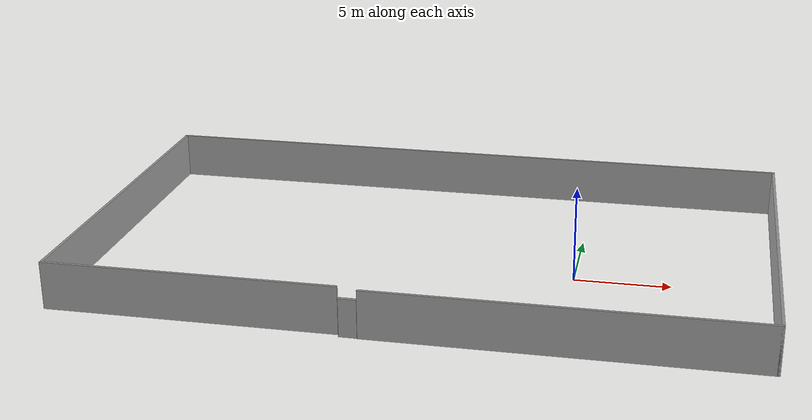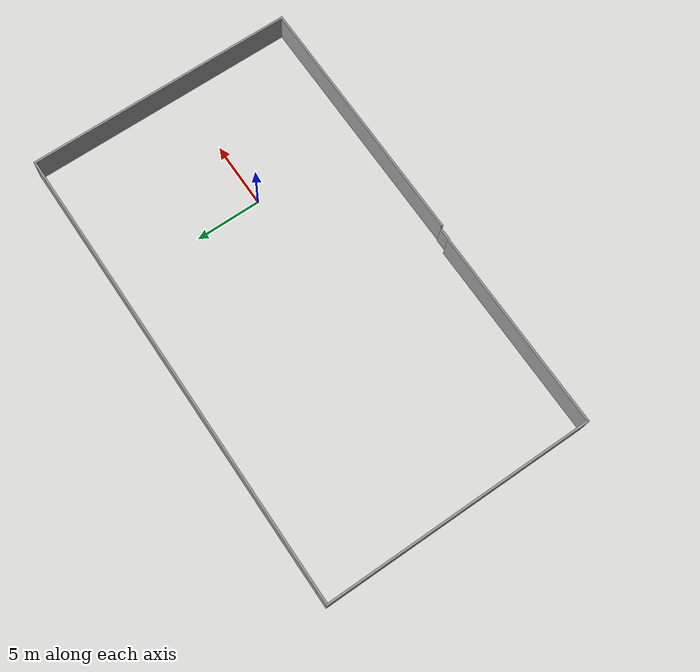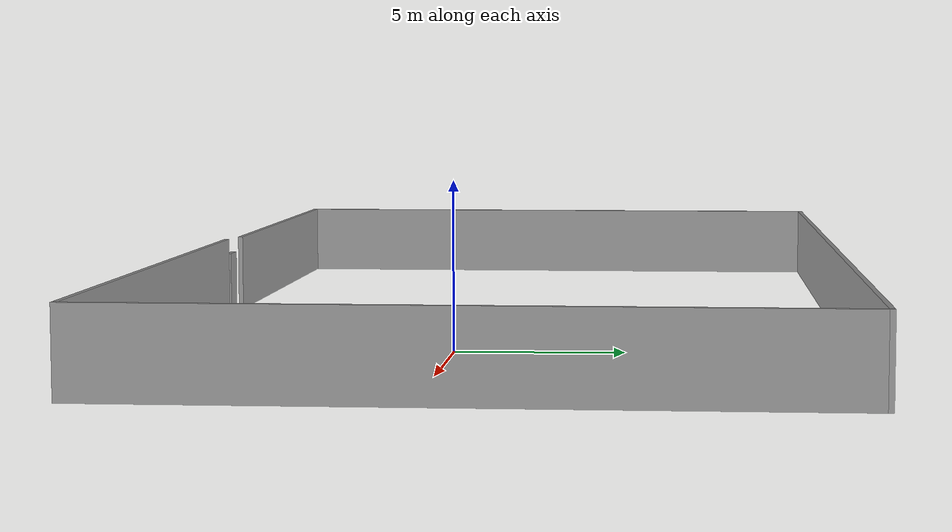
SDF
<?xml version='1.0'?>
<sdf version='1.6'>
  <model name='gujarong'>
    <pose frame=''>-7.55911 1.40107 0 0 -0 0</pose>
    <link name='Door_1'>
      <collision name='Door_1_Collision'>
        <geometry>
          <box>
            <size>0.9 0.17 2</size>
          </box>
        </geometry>
        <pose frame=''>0 0 1 0 -0 0</pose>
      </collision>
      <visual name='Door_1_Visual'>
        <pose frame=''>0 0 1 0 -0 0</pose>
        <geometry>
          <box>
            <size>0.9 0.17 2</size>
          </box>
        </geometry>
        <material>
          <script>
            <uri>file://media/materials/scripts/gazebo.material</uri>
            <name>Gazebo/Grey</name>
          </script>
        </material>
      </visual>
      <pose frame=''>-2.22103 -10.1344 0 0 -0 0</pose>
    </link>
    <link name='Wall_0'>
      <collision name='Wall_0_Collision'>
        <geometry>
          <box>
            <size>19.5 0.15 2.5</size>
          </box>
        </geometry>
        <pose frame=''>0 0 1.25 0 -0 0</pose>
      </collision>
      <visual name='Wall_0_Visual'>
        <pose frame=''>0 0 1.25 0 -0 0</pose>
        <geometry>
          <box>
            <size>19.5 0.15 2.5</size>
          </box>
        </geometry>
        <material>
          <script>
            <uri>file://media/materials/scripts/gazebo.material</uri>
            <name>Gazebo/Grey</name>
          </script>
          <ambient>1 1 1 1</ambient>
        </material>
        <meta>
          <layer>0</layer>
        </meta>
      </visual>
      <pose frame=''>8 -10.175 0 0 -0 0</pose>
    </link>
    <link name='Wall_1'>
      <collision name='Wall_1_Collision'>
        <geometry>
          <box>
            <size>20.5 0.15 2.5</size>
          </box>
        </geometry>
        <pose frame=''>0 0 1.25 0 -0 0</pose>
      </collision>
      <visual name='Wall_1_Visual'>
        <pose frame=''>0 0 1.25 0 -0 0</pose>
        <geometry>
          <box>
            <size>20.5 0.15 2.5</size>
          </box>
        </geometry>
        <material>
          <script>
            <uri>file://media/materials/scripts/gazebo.material</uri>
            <name>Gazebo/Grey</name>
          </script>
          <ambient>1 1 1 1</ambient>
        </material>
        <meta>
          <layer>0</layer>
        </meta>
      </visual>
      <pose frame=''>17.675 0 0 0 -0 1.5708</pose>
    </link>
    <link name='Wall_2'>
      <collision name='Wall_2_Collision'>
        <geometry>
          <box>
            <size>35.5 0.15 2.5</size>
          </box>
        </geometry>
        <pose frame=''>0 0 1.25 0 -0 0</pose>
      </collision>
      <visual name='Wall_2_Visual'>
        <pose frame=''>0 0 1.25 0 -0 0</pose>
        <geometry>
          <box>
            <size>35.5 0.15 2.5</size>
          </box>
        </geometry>
        <material>
          <script>
            <uri>file://media/materials/scripts/gazebo.material</uri>
            <name>Gazebo/Grey</name>
          </script>
          <ambient>1 1 1 1</ambient>
        </material>
        <meta>
          <layer>0</layer>
        </meta>
      </visual>
      <pose frame=''>0 10.175 0 0 -0 3.14159</pose>
    </link>
    <link name='Wall_3'>
      <collision name='Wall_3_Collision'>
        <geometry>
          <box>
            <size>20.25 0.15 2.5</size>
          </box>
        </geometry>
        <pose frame=''>0 0 1.25 0 -0 0</pose>
      </collision>
      <visual name='Wall_3_Visual'>
        <pose frame=''>0 0 1.25 0 -0 0</pose>
        <geometry>
          <box>
            <size>20.25 0.15 2.5</size>
          </box>
        </geometry>
        <material>
          <script>
            <uri>file://media/materials/scripts/gazebo.material</uri>
            <name>Gazebo/Grey</name>
          </script>
          <ambient>1 1 1 1</ambient>
        </material>
        <meta>
          <layer>0</layer>
        </meta>
      </visual>
      <pose frame=''>-17.675 0.125 0 0 -0 -1.5708</pose>
    </link>
    <link name='Wall_4'>
      <collision name='Wall_4_Collision'>
        <geometry>
          <box>
            <size>15 0.15 2.5</size>
          </box>
        </geometry>
        <pose frame=''>0 0 1.25 0 -0 0</pose>
      </collision>
      <visual name='Wall_4_Visual'>
        <pose frame=''>0 0 1.25 0 -0 0</pose>
        <geometry>
          <box>
            <size>15 0.15 2.5</size>
          </box>
        </geometry>
        <material>
          <script>
            <uri>file://media/materials/scripts/gazebo.material</uri>
            <name>Gazebo/Grey</name>
          </script>
          <ambient>1 1 1 1</ambient>
        </material>
        <meta>
          <layer>0</layer>
        </meta>
      </visual>
      <pose frame=''>-10.25 -9.925 0 0 -0 0</pose>
    </link>
    <static>1</static>
  </model>
</sdf>
